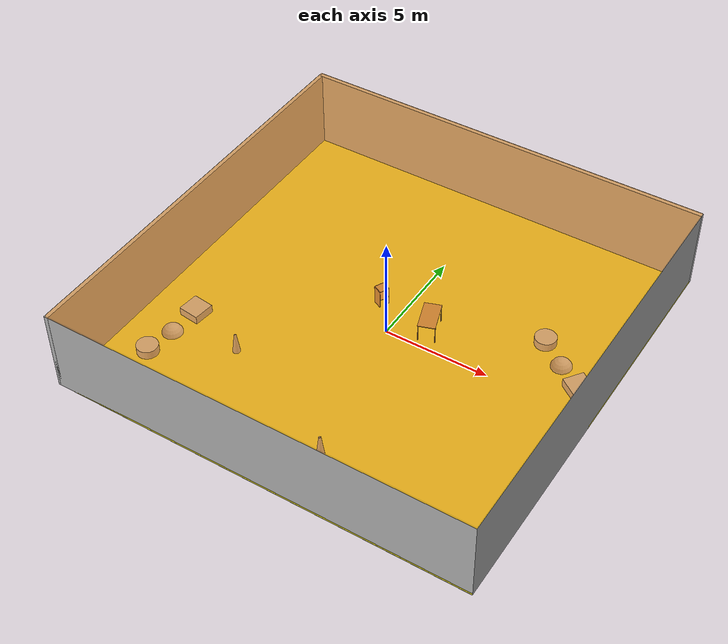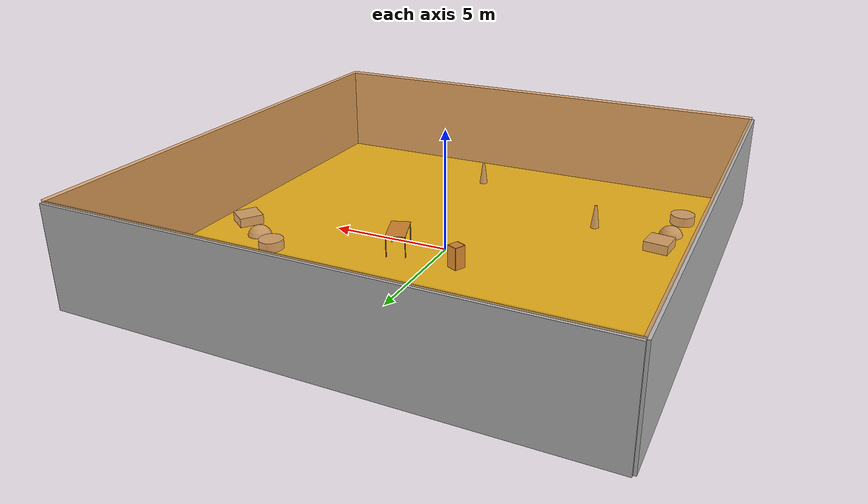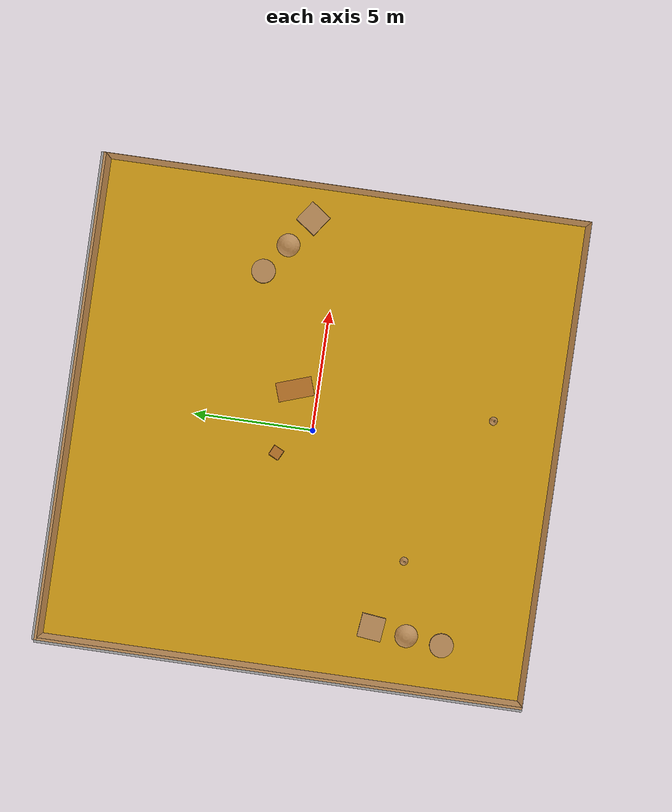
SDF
<sdf version="1.4">
 <world name="default">
  <physics type="ode">
   <max_step_size>0.001</max_step_size>
   <real_time_factor>1</real_time_factor>
   <real_time_update_rate>1000</real_time_update_rate>
   <gravity>0 0 -9.8</gravity>
  </physics>
  <scene><ambient>0.4 0.4 0.4 1</ambient><background>0.7 0.7 0.7 1</background><shadows>1</shadows></scene>
  <model name="Surrounding">
   <static>1</static>
   <link name="Ceiling">
    <collision name="Ceiling_Collision"><geometry><box><size>20 20 0.1</size></box></geometry></collision>
    <visual name="Ceiling_Visual">
     <geometry><box><size>20 20 0.1</size></box></geometry>
     <material>
      <script>
       <uri>file://media/materials/scripts/gazebo.material</uri>
       <name>Gazebo/OrangeTransparent</name>
      </script>
     </material>
    </visual>
    <pose>0 0 4.05 0 0 0</pose>
   </link>
   <link name="Wall_South">
    <collision name="Wall_South_Collision">
     <geometry><box><size>20 0 4</size></box></geometry>
     <pose>0 0 2 0 -0 0</pose>
    </collision>
    <visual name="Wall_South_Visual">
     <pose>0 0 2 0 -0 0</pose>
     <geometry><box><size>20 0 4</size></box></geometry>
     <material>
      <script><uri>file://media/materials/scripts/gazebo.material</uri><name>Gazebo/LightOff</name></script>
     </material>
    </visual>
    <velocity_decay><linear>0</linear><angular>0</angular></velocity_decay>
    <pose>0 -10 0 0 -0 0</pose>
   </link>
   <link name="Wall_East">
    <collision name="Wall_21_Collision">
     <geometry><box><size>20 0 4</size></box></geometry>
     <pose>0 0 2 0 -0 0</pose>
    </collision>
    <visual name="Wall_21_Visual">
     <pose>0 0 2 0 -0 0</pose>
     <geometry><box><size>20 0 4</size></box></geometry>
     <material>
      <script><uri>file://media/materials/scripts/gazebo.material</uri><name>Gazebo/GreyGradientSky</name></script>
     </material>
    </visual>
    <velocity_decay><linear>0</linear><angular>0</angular></velocity_decay>
    <pose>10 0 0 0 -0 1.5708</pose>
   </link>
   <link name="Wall_North">
    <collision name="Wall_22_Collision">
     <geometry><box><size>20 0.2 4</size></box></geometry>
     <pose>0 0 2 0 -0 0</pose>
    </collision>
    <visual name="Wall_22_Visual">
     <pose>0 0 2 0 -0 0</pose>
     <geometry><box><size>20 0.2 4</size></box></geometry>
     <material>
      <script><uri>file://media/materials/scripts/gazebo.material</uri><name>Gazebo/LightOff</name></script>
     </material>
    </visual>
    <velocity_decay><linear>0</linear><angular>0</angular></velocity_decay>
    <pose>0 10 0 0 -0 0</pose>
   </link>
   <link name="Wall_West">
    <collision name="Wall_23_Collision">
     <geometry><box><size>20 0.2 4</size></box></geometry>
     <pose>0 0 2 0 -0 0</pose>
    </collision>
    <visual name="Wall_23_Visual">
     <pose>0 0 2 0 -0 0</pose>
     <geometry><box><size>20 0.2 4</size></box></geometry>
     <material>
      <script><uri>file://media/materials/scripts/gazebo.material</uri><name>Gazebo/CloudySky</name></script>
     </material>
    </visual>
    <velocity_decay><linear>0</linear><angular>0</angular></velocity_decay>
    <pose>-10 0 0 0 0 -1.5708</pose>
   </link>
   <link name="Ground_link">
    <collision name="collision">
     <pose>0 0 .05 0 -0 0</pose>
     <geometry><box><size>20 20 0.1</size></box></geometry>
    </collision>
    <visual name="visual">
     <pose>0 0 .05 0 -0 0</pose>
     <geometry><box><size>20 20 0.1</size></box></geometry>
     <material>
      <script><uri>file://media/materials/scripts/gazebo.material</uri><name>Gazebo/Yellow</name></script>
     </material>
    </visual>
   </link>
   <static>1</static>
  </model>
  <spherical_coordinates>
   <surface_model>EARTH_WGS84</surface_model>
   <latitude_deg>0</latitude_deg>
   <longitude_deg>0</longitude_deg>
   <elevation>0</elevation>
   <heading_deg>0</heading_deg>
  </spherical_coordinates>
  <light name="lightball_0" type="diffuse">
   <diffuse>0.8 0.8 0.8 1</diffuse>
   <specular>0.2 0.2 0.2 1</specular>
   <attenuation>
    <range>100</range>
    <constant>0.7</constant>
    <linear>0.01</linear>
    <quadratic>0.001</quadratic>
   </attenuation>
   <direction>-0.5 0.1 -0.9</direction>
   <pose>5.39417836723 -2.08342395034 3.56662496787 0 0 0</pose>
  </light>
  <light name="lightball_1" type="diffuse">
   <diffuse>0.8 0.8 0.8 1</diffuse>
   <specular>0.2 0.2 0.2 1</specular>
   <attenuation>
    <range>100</range>
    <constant>0.7</constant>
    <linear>0.01</linear>
    <quadratic>0.001</quadratic>
   </attenuation>
   <direction>-0.5 0.1 -0.9</direction>
   <pose>9.63270013933 -9.12735172041 2.55905937808 0 0 0</pose>
  </light>
  <light name="lightball_2" type="diffuse">
   <diffuse>0.8 0.8 0.8 1</diffuse>
   <specular>0.2 0.2 0.2 1</specular>
   <attenuation>
    <range>100</range>
    <constant>0.7</constant>
    <linear>0.01</linear>
    <quadratic>0.001</quadratic>
   </attenuation>
   <direction>-0.5 0.1 -0.9</direction>
   <pose>-6.58798274978 6.00709878356 3.32777089164 0 0 0</pose>
  </light>
  <include>
   <uri>model://textured_shapes</uri>
   <pose>-7.89177638639 -5.0526624986 0 0 0 3.02825883044</pose>
  </include>
  <include>
   <uri>model://construction_cone</uri>
   <pose>-4.82157555856 -4.5112097195 0 0 0 1.20172456735</pose>
  </include>
  <include><uri>model://cabinet</uri><pose>-1.10608963508 1.37024304414 0 0 0 2.68628977467</pose></include>
  <include>
   <uri>model://construction_cone</uri>
   <pose>1.46778655523 -7.36594427221 0 0 0 0.473608936712</pose>
  </include>
  <include><uri>model://table</uri><pose>1.59676530847 0.982506467057 0 0 0 1.90284187803</pose></include>
  <include>
   <uri>model://textured_shapes</uri>
   <pose>7.49468720203 2.10554611059 0 0 0 0.952750673516</pose>
  </include>
 </world>
</sdf>

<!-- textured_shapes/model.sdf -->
<sdf version="1.6">
  <model name="textured_shapes">
    <pose>0 0 0.5 0 0 0</pose>
    <link name="box">
      <pose>0 -1.5 0 0 0 0</pose>
      <collision name="collision">
        <geometry>
          <box>
            <size>1 1 1</size>
          </box>
        </geometry>
      </collision>
      <visual name="visual">
        <geometry>
          <box>
            <size>1 1 1</size>
          </box>
        </geometry>
        <material>
          <script>
            <uri>model://../model_source/models/textured_shapes/materials/scripts</uri>
            <uri>model://../model_source/models/textured_shapes/materials/textures</uri>
            <name>TexturedShape/Squares</name>
          </script>
        </material>
      </visual>
    </link>
    <link name="sphere">
      <collision name="collision">
        <geometry>
          <sphere>
            <radius>0.5</radius>
          </sphere>
        </geometry>
      </collision>
      <visual name="visual">
        <geometry>
          <sphere>
            <radius>0.5</radius>
          </sphere>
        </geometry>
        <material>
          <script>
            <uri>model://../model_source/models/textured_shapes/materials/scripts</uri>
            <uri>model://../model_source/models/textured_shapes/materials/textures</uri>
            <name>TexturedShape/Squares</name>
          </script>
        </material>
      </visual>
    </link>
    <link name="cylinder">
      <pose>0 1.5 0 0 0 0</pose>
      <collision name="collision">
        <geometry>
          <cylinder>
            <radius>0.5</radius>
            <length>1</length>
          </cylinder>
        </geometry>
      </collision>
      <visual name="visual">
        <geometry>
          <cylinder>
            <radius>0.5</radius>
            <length>1</length>
          </cylinder>
        </geometry>
        <material>
          <script>
            <uri>model://../model_source/models/textured_shapes/materials/scripts</uri>
            <uri>model://../model_source/models/textured_shapes/materials/textures</uri>
            <name>TexturedShape/Squares</name>
          </script>
        </material>
      </visual>
    </link>
  </model>
</sdf>

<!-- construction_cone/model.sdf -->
<sdf version="1.5">
  <model name="Construction Cone">
    <link name="link">
      <collision name="collision">
        <geometry>
          <mesh>
            <scale>10 10 10</scale>
            <uri>file://isr-testbed/construction_cone/meshes/construction_cone.dae</uri>
          </mesh>
        </geometry>
      </collision>
      <visual name="visual">
        <geometry>
          <mesh>
            <scale>10 10 10</scale>
            <uri>file://isr-testbed/construction_cone/meshes/construction_cone.dae</uri>
          </mesh>
        </geometry>
      </visual>
    </link>
  </model>
</sdf>

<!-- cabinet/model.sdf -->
<sdf version="1.5">
  <model name="cabinet">
    <static>true</static>
    <link name="cabinet_bottom_plate">
      <inertial>
        <pose>0 0 -1 0 0 0</pose>
        <inertia>
          <ixx>2.050000</ixx>
          <ixy>0</ixy>
          <ixz>0</ixz>
          <iyy>2.050000</iyy>
          <iyz>0</iyz>
          <izz>2.050000</izz>
        </inertia>
        <mass>25.000000</mass>
      </inertial>
      <collision name="cabinet_bottom_plate_geom">
        <pose>0 0 0.010000 0 0 0</pose>
        <geometry>
          <box>
            <size>0.450000 0.450000 0.020000</size>
          </box>
        </geometry>
      </collision>
      <visual name="cabinet_bottom_plate_geom_visual">
        <pose>0 0 0.010000 0 0 0</pose>
        <geometry>
          <box>
            <size>0.450000 0.450000 0.020000</size>
          </box>
        </geometry>
        <material>
          <script>
            <uri>model://media/materials/scripts/gazebo.material</uri>
            <name>Gazebo/Wood</name>
          </script>
        </material>
      </visual>
      <collision name="cabinet_bottom_plate_geom_cabinet_back_plate">
        <pose>0.235000 0 0.510000 0 0 0</pose>
        <geometry>
          <box>
            <size>0.020000 0.450000 1.020000</size>
          </box>
        </geometry>
      </collision>
      <visual name="cabinet_bottom_plate_geom_cabinet_back_plate_visual">
        <pose>0.235000 0 0.510000 0 0 0</pose>
        <geometry>
          <box>
            <size>0.020000 0.450000 1.020000</size>
          </box>
        </geometry>
        <material>
          <script>
            <uri>model://media/materials/scripts/gazebo.material</uri>
            <name>Gazebo/Wood</name>
          </script>
        </material>
      </visual>
      <collision name="cabinet_bottom_plate_geom_cabinet_left_plate">
        <pose>0 0.235000 0.510000 0 0 0</pose>
        <geometry>
          <box>
            <size>0.450000 0.020000 1.020000</size>
          </box>
        </geometry>
      </collision>
      <visual name="cabinet_bottom_plate_geom_cabinet_left_plate_visual">
        <pose>0 0.235000 0.510000 0 0 0</pose>
        <geometry>
          <box>
            <size>0.450000 0.020000 1.020000</size>
          </box>
        </geometry>
        <material>
          <script>
            <uri>model://media/materials/scripts/gazebo.material</uri>
            <name>Gazebo/Wood</name>
          </script>
        </material>
      </visual>
      <collision name="cabinet_bottom_plate_geom_cabinet_middle_plate">
        <pose>0 0 0.510000 0 0 0</pose>
        <geometry>
          <box>
            <size>0.450000 0.450000 0.020000</size>
          </box>
        </geometry>
      </collision>
      <visual name="cabinet_bottom_plate_geom_cabinet_middle_plate_visual">
        <pose>0 0 0.510000 0 0 0</pose>
        <geometry>
          <box>
            <size>0.450000 0.450000 0.020000</size>
          </box>
        </geometry>
        <material>
          <script>
            <uri>model://media/materials/scripts/gazebo.material</uri>
            <name>Gazebo/Wood</name>
          </script>
        </material>
      </visual>
      <collision name="cabinet_bottom_plate_geom_cabinet_right_plate">
        <pose>0 -0.235000 0.510000 0 0 0</pose>
        <geometry>
          <box>
            <size>0.450000 0.020000 1.020000</size>
          </box>
        </geometry>
      </collision>
      <visual name="cabinet_bottom_plate_geom_cabinet_right_plate_visual">
        <pose>0 -0.235000 0.510000 0 0 0</pose>
        <geometry>
          <box>
            <size>0.450000 0.020000 1.020000</size>
          </box>
        </geometry>
        <material>
          <script>
            <uri>model://media/materials/scripts/gazebo.material</uri>
            <name>Gazebo/Wood</name>
          </script>
        </material>
      </visual>
      <collision name="cabinet_bottom_plate_geom_cabinet_top_plate">
        <pose>0 0 1.010000 0 0 0</pose>
        <geometry>
          <box>
            <size>0.450000 0.450000 0.020000</size>
          </box>
        </geometry>
      </collision>
      <visual name="cabinet_bottom_plate_geom_cabinet_top_plate_visual">
        <pose>0 0 1.010000 0 0 0</pose>
        <geometry>
          <box>
            <size>0.450000 0.450000 0.020000</size>
          </box>
        </geometry>
        <material>
          <script>
            <uri>model://media/materials/scripts/gazebo.material</uri>
            <name>Gazebo/Wood</name>
          </script>
        </material>
      </visual>
    </link>
  </model>
</sdf>

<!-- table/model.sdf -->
<sdf version="1.5">
  <model name="table">
    <static>true</static>
    <link name="link">
      <collision name="surface">
        <pose>0 0 1.0 0 0 0</pose>
        <geometry>
          <box>
            <size>1.5 0.8 0.03</size>
          </box>
        </geometry>
        <surface>
          <friction>
            <ode>
              <mu>0.6</mu>
              <mu2>0.6</mu2>
            </ode>
          </friction>
        </surface>
      </collision>
      <visual name="visual1">
        <pose>0 0 1.0 0 0 0</pose>
        <geometry>
          <box>
            <size>1.5 0.8 0.03</size>
          </box>
        </geometry>
        <material>
          <script>
            <uri>model://media/materials/scripts/gazebo.material</uri>
            <name>Gazebo/Wood</name>
          </script>
        </material>
      </visual>
      <collision name="front_left_leg">
        <pose>0.68 0.38 0.5 0 0 0</pose>
        <geometry>
          <cylinder>
            <radius>0.02</radius>
            <length>1.0</length>
          </cylinder>
        </geometry>
      </collision>
      <visual name="front_left_leg">
        <pose>0.68 0.38 0.5 0 0 0</pose>
        <geometry>
          <cylinder>
            <radius>0.02</radius>
            <length>1.0</length>
          </cylinder>
        </geometry>
        <material>
          <script>
            <uri>model://media/materials/scripts/gazebo.material</uri>
            <name>Gazebo/Grey</name>
          </script>
        </material>
      </visual>
      <collision name="front_right_leg">
        <pose>0.68 -0.38 0.5 0 0 0</pose>
        <geometry>
          <cylinder>
            <radius>0.02</radius>
            <length>1.0</length>
          </cylinder>
        </geometry>
      </collision>
      <visual name="front_right_leg">
        <pose>0.68 -0.38 0.5 0 0 0</pose>
        <geometry>
          <cylinder>
            <radius>0.02</radius>
            <length>1.0</length>
          </cylinder>
        </geometry>
        <material>
          <script>
            <uri>model://media/materials/scripts/gazebo.material</uri>
            <name>Gazebo/Grey</name>
          </script>
        </material>
      </visual>
      <collision name="back_right_leg">
        <pose>-0.68 -0.38 0.5 0 0 0</pose>
        <geometry>
          <cylinder>
            <radius>0.02</radius>
            <length>1.0</length>
          </cylinder>
        </geometry>
      </collision>
      <visual name="back_right_leg">
        <pose>-0.68 -0.38 0.5 0 0 0</pose>
        <geometry>
          <cylinder>
            <radius>0.02</radius>
            <length>1.0</length>
          </cylinder>
        </geometry>
        <material>
          <script>
            <uri>model://media/materials/scripts/gazebo.material</uri>
            <name>Gazebo/Grey</name>
          </script>
        </material>
      </visual>
      <collision name="back_left_leg">
        <pose>-0.68 0.38 0.5 0 0 0</pose>
        <geometry>
          <cylinder>
            <radius>0.02</radius>
            <length>1.0</length>
          </cylinder>
        </geometry>
      </collision>
      <visual name="back_left_leg">
        <pose>-0.68 0.38 0.5 0 0 0</pose>
        <geometry>
          <cylinder>
            <radius>0.02</radius>
            <length>1.0</length>
          </cylinder>
        </geometry>
        <material>
          <script>
            <uri>model://media/materials/scripts/gazebo.material</uri>
            <name>Gazebo/Grey</name>
          </script>
        </material>
      </visual>
    </link>
  </model>
</sdf>
